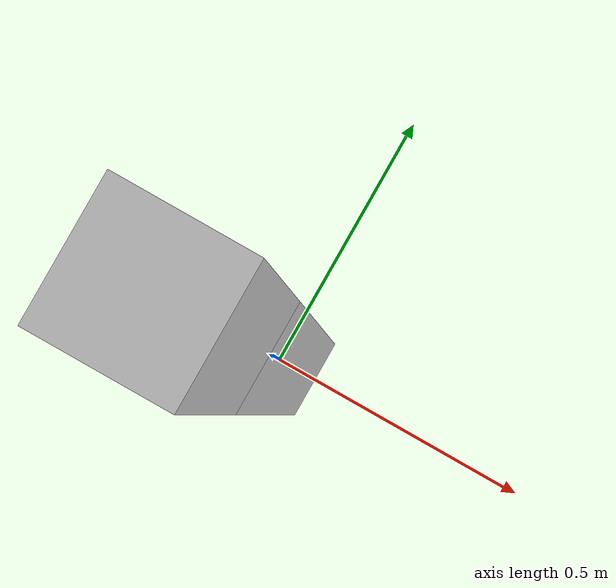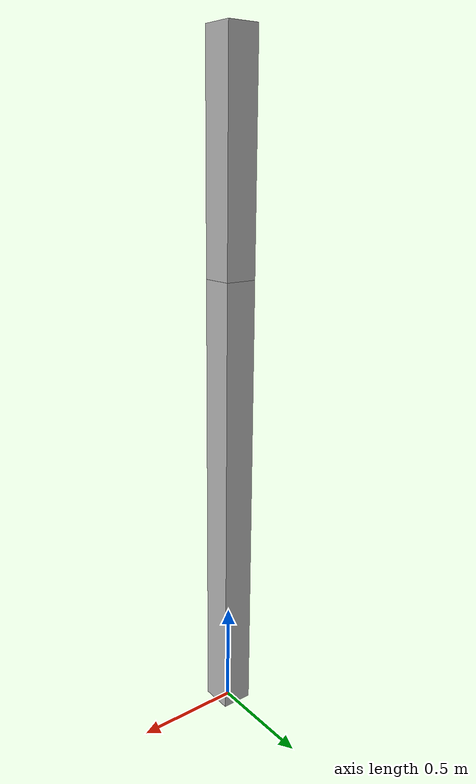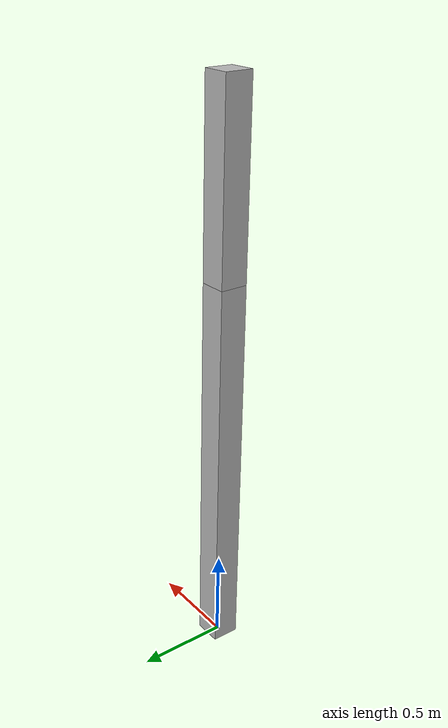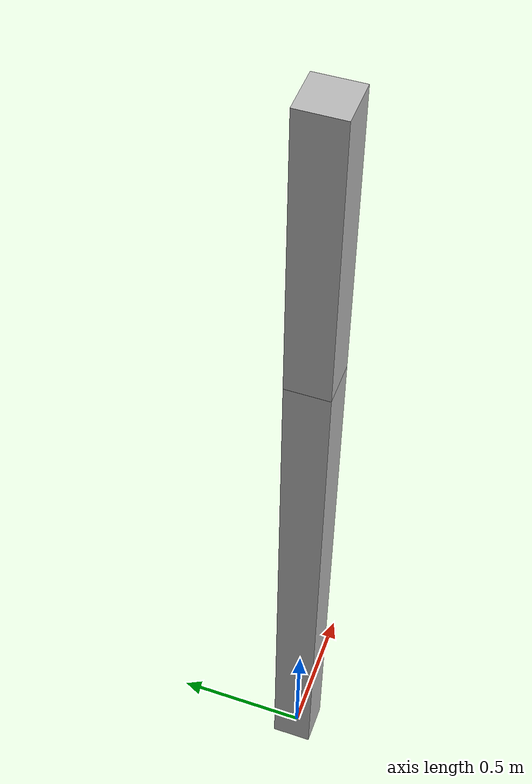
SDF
<?xml version="1.0"?>
<sdf version="1.7">
  <model name="single_pendulum">
    <link name="base">
      <pose>0 0 1.075 0 0 0</pose>
      <inertial>
        <mass>1.0</mass>
        <inertia>
          <ixx>0.385</ixx>
          <iyy>0.385</iyy>
          <izz>0.01875</izz>
          <ixy>0</ixy>
          <ixz>0</ixz>
          <iyz>0</iyz>
        </inertia>
      </inertial>
      <visual name="visual">
        <geometry>
          <box>
            <size>0.15 0.15 2.15</size>
          </box>
        </geometry>
      </visual>
      <collision name="collision">
        <geometry>
          <box>
            <size>0.15 0.15 2.15</size>
          </box>
        </geometry>
      </collision>
    </link>

    <link name="upper">
      <pose>0 0 2.65 0 0 0</pose>
      <inertial>
        <mass>0.5</mass>
        <inertia>
          <ixx>0.043</ixx>
          <iyy>0.043</iyy>
          <izz>0.00938</izz>
          <ixy>0</ixy>
          <ixz>0</ixz>
          <iyz>0</iyz>
        </inertia>
      </inertial>
      <visual name="visual">
        <geometry>
          <box>
            <size>0.15 0.15 1.0</size>
          </box>
        </geometry>
      </visual>
      <collision name="collision">
        <geometry>
          <box>
            <size>0.15 0.15 1.0</size>
          </box>
        </geometry>
      </collision>
    </link>

    <joint name="fixed_joint" type="fixed">
      <parent>world</parent>
      <child>base</child>
    </joint>

    <joint name="upper_joint" type="revolute">
      <parent>base</parent>
      <child>upper</child>
      <pose>0 0 1.0 0 0 0</pose>
      <axis>
        <xyz>1 0 0</xyz>
      </axis>
    </joint>
  </model>
</sdf>
